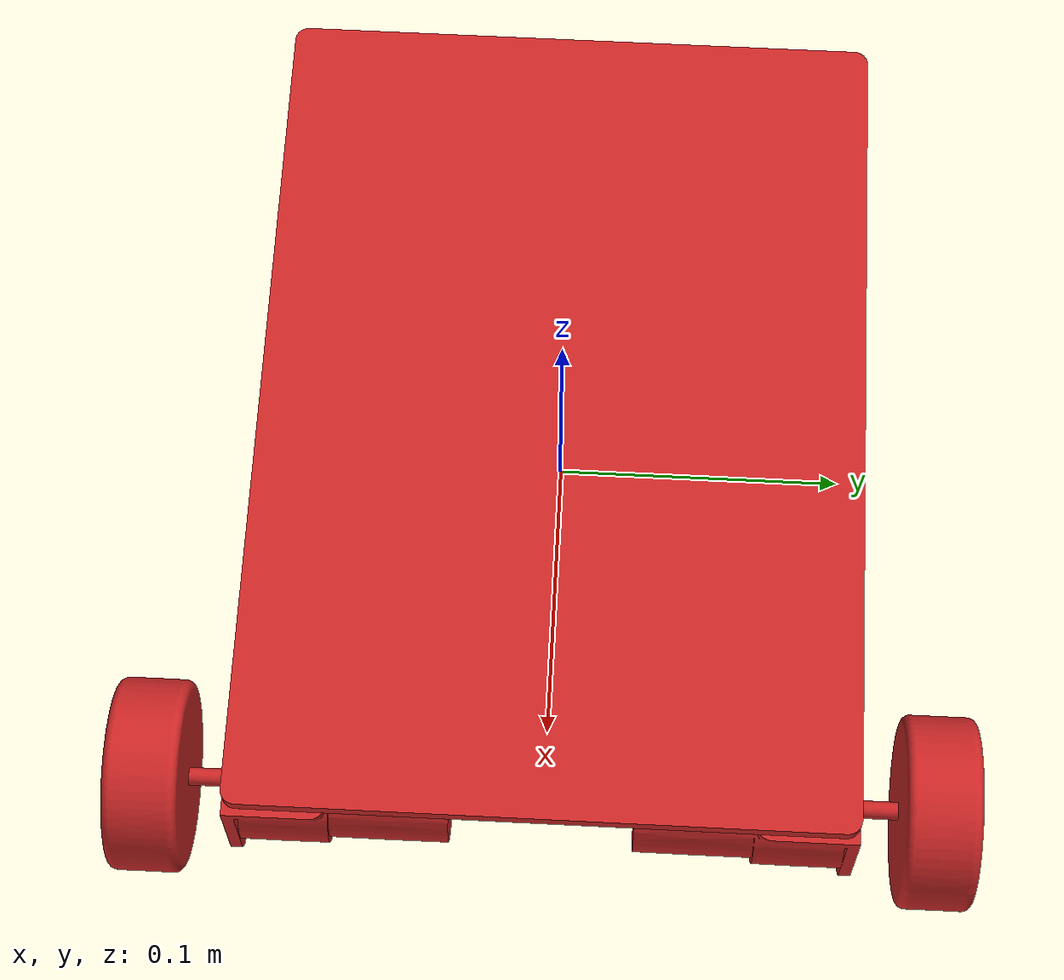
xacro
<robot name="simplebot">
  <!-- link -->
    <link name="base_link">
    </link>

    <link name="wheel_left_link">
      <visual>
        <geometry>
          <mesh filename="package://simplebot_description/dae/wheel.dae" />
        </geometry>
        <origin xyz="0 0 0" rpy="0 0 3.14"/>
          <material name="red">
        </material>

      </visual>
      <collision>
        <geometry>
          <cylinder length="0.025" radius="0.0325"/>
        </geometry>
        <origin xyz="0.0275 0 0" rpy="0 1.57 0"/>
      </collision>
      <inertial>
        <origin xyz="0 0 0" rpy="0 0 0"/>
        <mass value="0.05"/>
        <inertia ixx="0.000015807" ixy="0" ixz="0"
          iyy="0.000015807" iyz="0"
          izz="0.000026406"/>
      </inertial>
    </link>

    <link name="wheel_right_link">
      <visual>
        <geometry>
          <mesh filename="package://simplebot_description/dae/wheel.dae" />
        </geometry>
        <origin xyz="0 0 0" rpy="0 0 0"/>
          <material name="red">
        </material>

      </visual>
      <collision>
        <geometry>
          <cylinder length="0.025" radius="0.0325"/>
        </geometry>
        <origin xyz="-0.0275 0 0" rpy="0 1.57 0"/>
      </collision>
      <inertial>
        <origin xyz="0 0 0" rpy="0 0 0"/>
        <mass value="0.05"/>
        <inertia ixx="0.000015807" ixy="0" ixz="0"
          iyy="0.000015807" iyz="0"
          izz="0.000026406"/>
      </inertial>
    </link>

    <link name="motor_left_link">
      <visual>
        <geometry>
          <mesh filename="package://simplebot_description/dae/motor.dae" />
        </geometry>
        <origin xyz="0 0 0" rpy="0 0 0"/>
          <material name="red">
        </material>

      </visual>
      <collision>
        <geometry>
          <cylinder length="0.06" radius="0.02"/>
        </geometry>
        <origin xyz="0 -0.03 0.025" rpy="0 1.57 1.57"/>
      </collision>
      <inertial>
        <origin xyz="0 0 0" rpy="0 0 0"/>
        <mass value="0.3"/>
        <inertia ixx="0.000136875" ixy="0" ixz="0"
          iyy="0.000136875" iyz="0"
          izz="0.00006"/>
      </inertial>
    </link>

    <link name="motor_right_link">
      <visual>
        <geometry>
          <mesh filename="package://simplebot_description/dae/motor.dae" />
        </geometry>
        <origin xyz="0 0 0" rpy="0 0 0"/>
          <material name="red">
        </material>

      </visual>
      <collision>
        <geometry>
          <cylinder length="0.06" radius="0.02"/>
        </geometry>
        <origin xyz="0 -0.03 0.025" rpy="0 1.57 1.57"/>
      </collision>
      <inertial>
        <origin xyz="0 0 0" rpy="0 0 0"/>
        <mass value="0.3"/>
        <inertia ixx="0.000136875" ixy="0" ixz="0"
          iyy="0.000136875" iyz="0"
          izz="0.00006"/>
      </inertial>
    </link>

    <link name="body_link">
      <visual>
        <geometry>
          <mesh filename="package://simplebot_description/dae/base_board.dae" />
        </geometry>
          <material name="red">
        </material>
      </visual>
      <collision>
        <geometry>
          <box size="0.21 0.297 0.004"/>
        </geometry>
        <origin xyz="0 0 0" rpy="0 0 0"/>
      </collision>
      <inertial>
        <origin xyz="0 0 0" rpy="0 0 0"/>
        <mass value="0.3"/>
        <inertia ixx="0.0011029" ixy="0" ixz="0"
          iyy="0.002205625" iyz="0"
          izz="0.003307725"/>

      </inertial>
    </link>

    <!-- caster -->

    <link name="caster_holder_link">
      <visual>
        <geometry>
          <cylinder length="0.04" radius="0.02"/>
        </geometry>
          <material name="red">
        </material>
      </visual>

      <collision>
        <geometry>
          <cylinder length="0.04" radius="0.02"/>
        </geometry>
      </collision>

    <inertial>
      <origin xyz="0 0 0"/>
      <mass value="0.05"/>
      <inertia ixx="0.000011666" ixy="0" ixz="0" iyy="0.000011666"  iyz="0" izz="0.000011666"/>
    </inertial>

    </link>

    <link name="caster_ball_link">
      <visual>
        <geometry>
          <sphere radius="0.015"/>
        </geometry>
        <material name="green">
          <color rgba="0 1 0 1"/>
        </material>
      </visual>

      <collision>
        <geometry>
          <sphere radius="0.015"/>
        </geometry>
      </collision>

    <inertial>
      <origin xyz="0 0 0"/>
      <mass value="0.05"/>
      <inertia ixx="0.0000045" ixy="0" ixz="0" iyy="0.0000045"  iyz="0" izz="0.0000045"/>
    </inertial>

    </link>

    <!-- joint -->
    <joint name="base_joint" type="fixed">
        <parent link="base_link"/>
        <child  link="body_link"/>
        <origin xyz="0 0 0.0535" rpy="0 0 -1.57"/>
    </joint>

    <joint name="motor_left_joint" type="fixed">
        <parent link="body_link"/>
        <child  link="motor_left_link"/>
        <origin xyz="-0.105 0.13 -0.004" rpy="0 3.14 1.57"/>
    </joint>
    <joint name="wheel_left_joint" type="continuous">
        <parent link="motor_left_link"/>
        <child  link="wheel_left_link"/>
        <origin xyz="0 0 0.025" rpy="0 0 1.57"/>
    </joint>

    <joint name="motor_right_joint" type="fixed">
        <parent link="body_link"/>
        <child  link="motor_right_link"/>
        <origin xyz="0.105 0.13 -0.004" rpy="0 3.14 -1.57"/>
    </joint>
    <joint name="wheel_right_joint" type="continuous">
        <parent link="motor_right_link"/>
        <child  link="wheel_right_link"/>
        <origin xyz="0 0 0.025" rpy="0 0 -1.57"/>
    </joint>

    <!-- caster -->
    <joint name="caster_holder_joint" type="fixed">
      <parent link="body_link"/>
      <child  link="caster_holder_link"/>
      <origin xyz="0 -0.12 -0.02" rpy="0 0 1.57"/>
    </joint>
    <joint name="caster_ball_joint" type="fixed">
      <parent link="caster_holder_link"/>
      <child  link="caster_ball_link"/>
      <origin xyz="0 0 -0.025" rpy="0 0 1.57"/>
    </joint>

    <gazebo reference="wheel_right_link">
      <selfCollide>true</selfCollide>
      <mu1 value="0.75" />
      <mu2 value="0.75" />
    </gazebo>

    <gazebo reference="wheel_left_link">
      <selfCollide>true</selfCollide>
      <mu1 value="0.75" />
      <mu2 value="0.75" />
    </gazebo>

    <gazebo reference="body_link">
      <selfCollide>true</selfCollide>
      <mu1 value="0.08" />
      <mu2 value="0.08" />
    </gazebo>

    <gazebo reference="caster_ball_link">
      <selfCollide>true</selfCollide>
      <mu1 value="0.0" />
      <mu2 value="0.0" />
    </gazebo>

  </robot>
